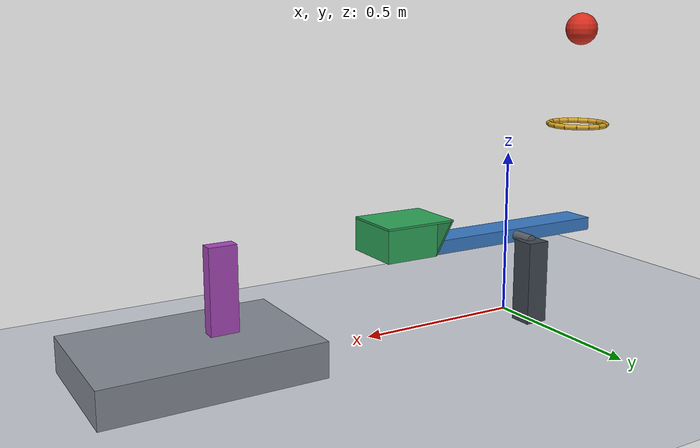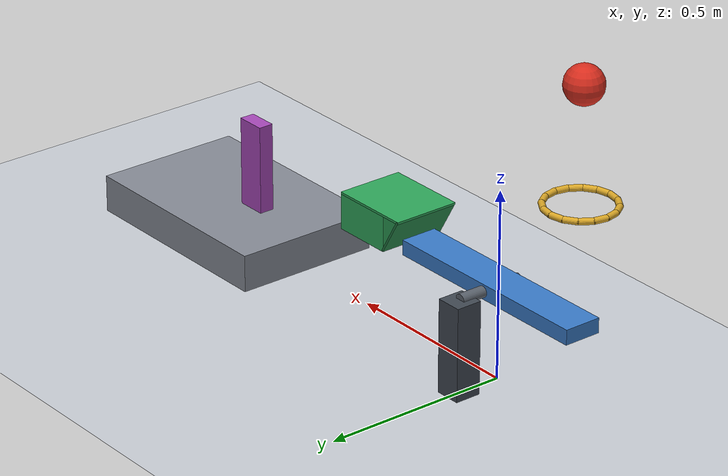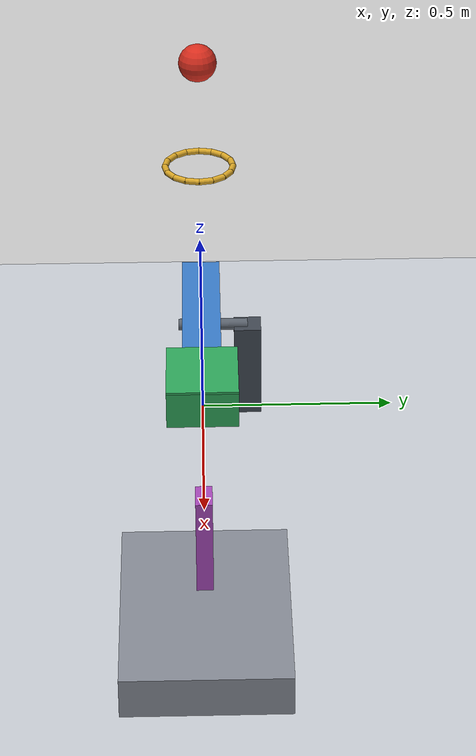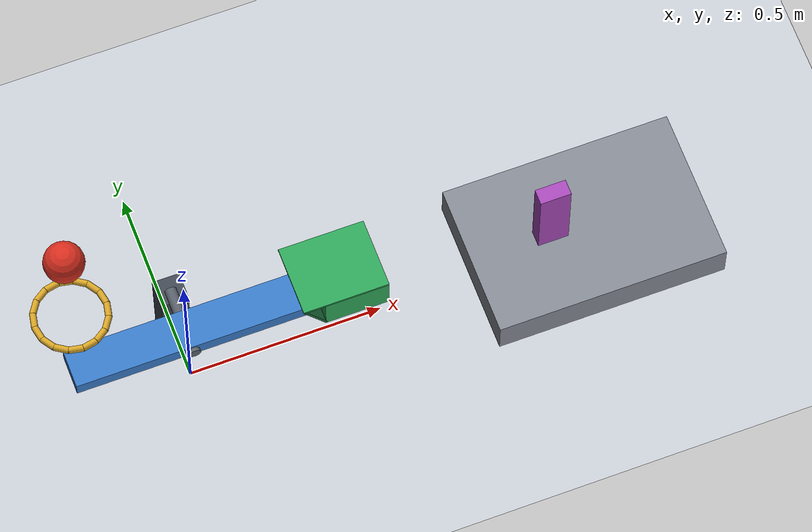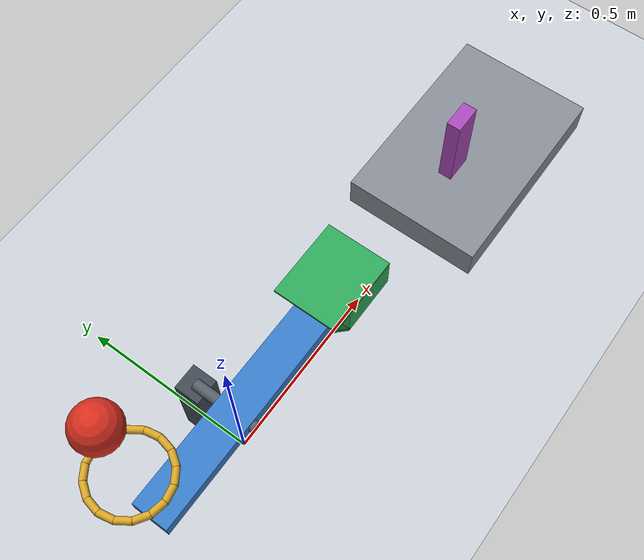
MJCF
<mujoco model="ball_ring_lever_cart">
  <compiler angle="degree" autolimits="true"/>
  <option timestep="0.002" gravity="0 0 -9.81" integrator="implicitfast" cone="elliptic" iterations="100" tolerance="1e-10"/>

  <visual>
    <headlight ambient="0.35 0.35 0.35" diffuse="0.65 0.65 0.65" specular="0.2 0.2 0.2"/>
  </visual>

  <worldbody>
    <light name="overhead" pos="0.3 -1.5 3" dir="0 0 -1"/>
    <camera name="overview" pos="1.7 -2.6 1.6" xyaxes="0.88 0.48 0 -0.22 0.40 0.89"/>

    <geom name="floor" type="plane" size="3 3 0.1" friction="0.72 0.005 0.005" condim="6" solref="0.006 0.71565" solimp="0.99 0.99 0.001" rgba="0.78 0.80 0.83 1"/>

    <!-- Ring center plane: z=0.57. Its polygonal opening has a 0.16 m minimum clear diameter. -->
    <body name="ring1" pos="-0.28 0 0.57">
      <geom name="ring1_segment01" type="capsule" fromto="0.090000000 0 0 0.083149158 0.034441509 0" size="0.008270676" friction="0.72 0.005 0.005" condim="6" solref="0.006 0.71565" solimp="0.99 0.99 0.001" rgba="0.85 0.65 0.15 1"/>
      <geom name="ring1_segment02" type="capsule" fromto="0.083149158 0.034441509 0 0.063639610 0.063639610 0" size="0.008270676" friction="0.72 0.005 0.005" condim="6" solref="0.006 0.71565" solimp="0.99 0.99 0.001" rgba="0.85 0.65 0.15 1"/>
      <geom name="ring1_segment03" type="capsule" fromto="0.063639610 0.063639610 0 0.034441509 0.083149158 0" size="0.008270676" friction="0.72 0.005 0.005" condim="6" solref="0.006 0.71565" solimp="0.99 0.99 0.001" rgba="0.85 0.65 0.15 1"/>
      <geom name="ring1_segment04" type="capsule" fromto="0.034441509 0.083149158 0 0 0.090000000 0" size="0.008270676" friction="0.72 0.005 0.005" condim="6" solref="0.006 0.71565" solimp="0.99 0.99 0.001" rgba="0.85 0.65 0.15 1"/>
      <geom name="ring1_segment05" type="capsule" fromto="0 0.090000000 0 -0.034441509 0.083149158 0" size="0.008270676" friction="0.72 0.005 0.005" condim="6" solref="0.006 0.71565" solimp="0.99 0.99 0.001" rgba="0.85 0.65 0.15 1"/>
      <geom name="ring1_segment06" type="capsule" fromto="-0.034441509 0.083149158 0 -0.063639610 0.063639610 0" size="0.008270676" friction="0.72 0.005 0.005" condim="6" solref="0.006 0.71565" solimp="0.99 0.99 0.001" rgba="0.85 0.65 0.15 1"/>
      <geom name="ring1_segment07" type="capsule" fromto="-0.063639610 0.063639610 0 -0.083149158 0.034441509 0" size="0.008270676" friction="0.72 0.005 0.005" condim="6" solref="0.006 0.71565" solimp="0.99 0.99 0.001" rgba="0.85 0.65 0.15 1"/>
      <geom name="ring1_segment08" type="capsule" fromto="-0.083149158 0.034441509 0 -0.090000000 0 0" size="0.008270676" friction="0.72 0.005 0.005" condim="6" solref="0.006 0.71565" solimp="0.99 0.99 0.001" rgba="0.85 0.65 0.15 1"/>
      <geom name="ring1_segment09" type="capsule" fromto="-0.090000000 0 0 -0.083149158 -0.034441509 0" size="0.008270676" friction="0.72 0.005 0.005" condim="6" solref="0.006 0.71565" solimp="0.99 0.99 0.001" rgba="0.85 0.65 0.15 1"/>
      <geom name="ring1_segment10" type="capsule" fromto="-0.083149158 -0.034441509 0 -0.063639610 -0.063639610 0" size="0.008270676" friction="0.72 0.005 0.005" condim="6" solref="0.006 0.71565" solimp="0.99 0.99 0.001" rgba="0.85 0.65 0.15 1"/>
      <geom name="ring1_segment11" type="capsule" fromto="-0.063639610 -0.063639610 0 -0.034441509 -0.083149158 0" size="0.008270676" friction="0.72 0.005 0.005" condim="6" solref="0.006 0.71565" solimp="0.99 0.99 0.001" rgba="0.85 0.65 0.15 1"/>
      <geom name="ring1_segment12" type="capsule" fromto="-0.034441509 -0.083149158 0 0 -0.090000000 0" size="0.008270676" friction="0.72 0.005 0.005" condim="6" solref="0.006 0.71565" solimp="0.99 0.99 0.001" rgba="0.85 0.65 0.15 1"/>
      <geom name="ring1_segment13" type="capsule" fromto="0 -0.090000000 0 0.034441509 -0.083149158 0" size="0.008270676" friction="0.72 0.005 0.005" condim="6" solref="0.006 0.71565" solimp="0.99 0.99 0.001" rgba="0.85 0.65 0.15 1"/>
      <geom name="ring1_segment14" type="capsule" fromto="0.034441509 -0.083149158 0 0.063639610 -0.063639610 0" size="0.008270676" friction="0.72 0.005 0.005" condim="6" solref="0.006 0.71565" solimp="0.99 0.99 0.001" rgba="0.85 0.65 0.15 1"/>
      <geom name="ring1_segment15" type="capsule" fromto="0.063639610 -0.063639610 0 0.083149158 -0.034441509 0" size="0.008270676" friction="0.72 0.005 0.005" condim="6" solref="0.006 0.71565" solimp="0.99 0.99 0.001" rgba="0.85 0.65 0.15 1"/>
      <geom name="ring1_segment16" type="capsule" fromto="0.083149158 -0.034441509 0 0.090000000 0 0" size="0.008270676" friction="0.72 0.005 0.005" condim="6" solref="0.006 0.71565" solimp="0.99 0.99 0.001" rgba="0.85 0.65 0.15 1"/>
    </body>

    <!-- Ball center starts 0.30 m above the ring plane. -->
    <!-- At first lever contact its center is z=0.32, 0.25 m below that plane. -->
    <body name="ball1" pos="-0.28 0 0.87">
      <freejoint name="ball1_free"/>
      <geom name="ball1_sphere" type="sphere" size="0.05" mass="0.20" friction="0.72 0.005 0.005" condim="6" solref="0.006 0.71565" solimp="0.99 0.99 0.001" rgba="0.85 0.18 0.12 1"/>
    </body>

    <body name="lever1_support" pos="0 0.12 0.125">
      <geom name="lever1_support_column" type="box" size="0.035 0.035 0.125" friction="0.72 0.005 0.005" condim="6" solref="0.006 0.71565" solimp="0.99 0.99 0.001" rgba="0.25 0.28 0.32 1"/>
      <geom name="lever1_support_axle" type="cylinder" pos="0 -0.09 0.125" quat="0.707106781 0.707106781 0 0" size="0.015 0.09" contype="0" conaffinity="0" rgba="0.35 0.38 0.42 1"/>
    </body>

    <!-- Positive hinge motion lowers the left end and raises the right end. -->
    <body name="lever1" pos="0 0 0.25">
      <joint name="lever1_hinge" type="hinge" axis="0 -1 0" range="0 45" damping="0.04" solreflimit="0.004 1" solimplimit="0.99 0.99 0.001"/>
      <geom name="lever1_beam" type="box" size="0.30 0.05 0.02" mass="0.50" friction="0.72 0.005 0.005" condim="6" solref="0.006 0.71565" solimp="0.99 0.99 0.001" rgba="0.22 0.48 0.78 1"/>
    </body>

    <!-- Ideal horizontal slide: joint constraint supports the cart without floor drag. -->
    <!-- Three boxes form a beveled hull inside a 0.22 x 0.18 x 0.10 m envelope. -->
    <body name="cart1" pos="0.38 0 0.29">
      <inertial pos="0 0 0" mass="0.50" diaginertia="0.001766667 0.002433333 0.003366667"/>
      <joint name="cart1_slide" type="slide" axis="1 0 0" range="0 0.425" damping="0.20" solreflimit="0.004 1" solimplimit="0.99 0.99 0.001"/>
      <geom name="cart1_top" type="box" pos="0 0 0.047" size="0.11 0.09 0.003" mass="0" friction="0.72 0.005 0.005" condim="6" solref="0.006 0.71565" solimp="0.99 0.99 0.001" rgba="0.18 0.65 0.35 1"/>
      <geom name="cart1_hull" type="box" pos="0.028 0 -0.003" size="0.082 0.09 0.047" mass="0" friction="0.72 0.005 0.005" condim="6" solref="0.006 0.71565" solimp="0.99 0.99 0.001" rgba="0.18 0.65 0.35 1"/>
      <geom name="cart1_strike_face" type="box" pos="-0.079400436 0 0" euler="0 60 0" size="0.056002976 0.09 0.003" mass="0" friction="0.72 0.005 0.005" condim="6" solref="0.006 0.71565" solimp="0.99 0.99 0.001" rgba="0.12 0.45 0.24 1"/>
    </body>

    <body name="domino1_support" pos="1.04 0 0.05">
      <geom name="domino1_support_platform" type="box" size="0.30 0.20 0.05" friction="0.72 0.005 0.005" condim="6" solref="0.006 0.71565" solimp="0.99 0.99 0.001" rgba="0.52 0.54 0.58 1"/>
    </body>

    <!-- Cart front starts at x=0.49; domino near face is x=0.91: a 0.42 m gap. -->
    <body name="domino1" pos="0.95 0 0.22">
      <freejoint name="domino1_free"/>
      <geom name="domino1_box" type="box" size="0.04 0.02 0.12" mass="0.25" friction="0.72 0.005 0.005" condim="6" solref="0.006 0.71565" solimp="0.99 0.99 0.001" rgba="0.65 0.28 0.72 1"/>
    </body>
  </worldbody>

  <keyframe>
    <key name="start" qpos="-0.28 0 0.87 1 0 0 0 0 0 0.95 0 0.22 1 0 0 0" qvel="0 0 0 0 0 0 0 0 0 0 0 0 0 0"/>
  </keyframe>
</mujoco>
